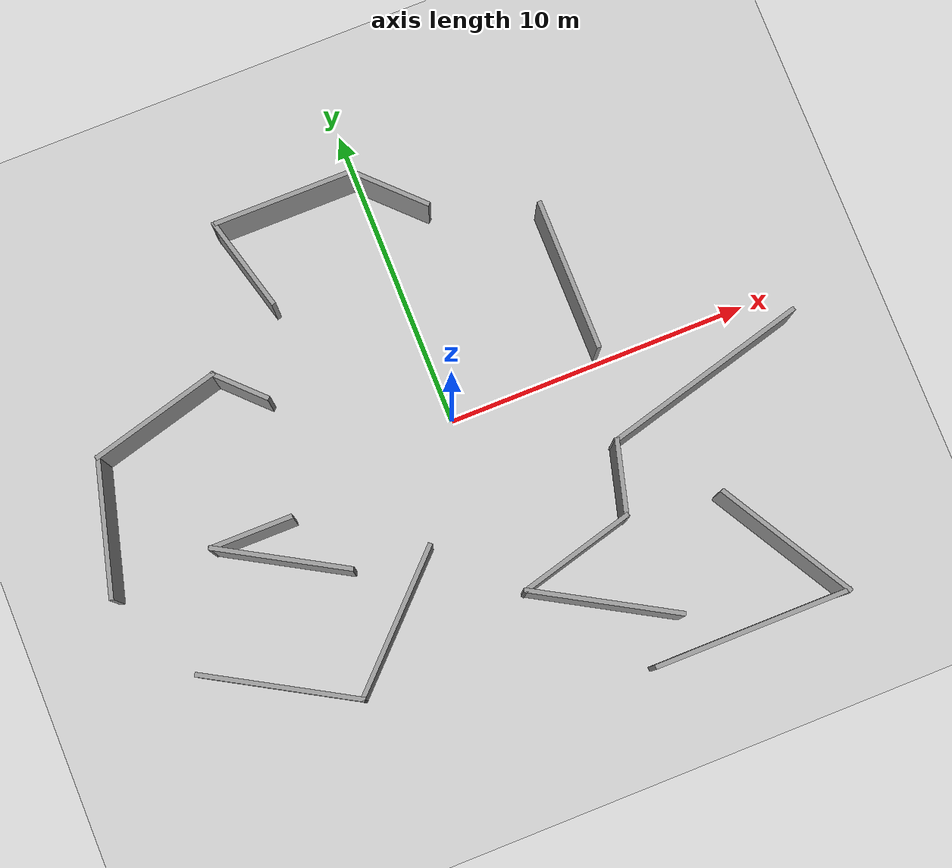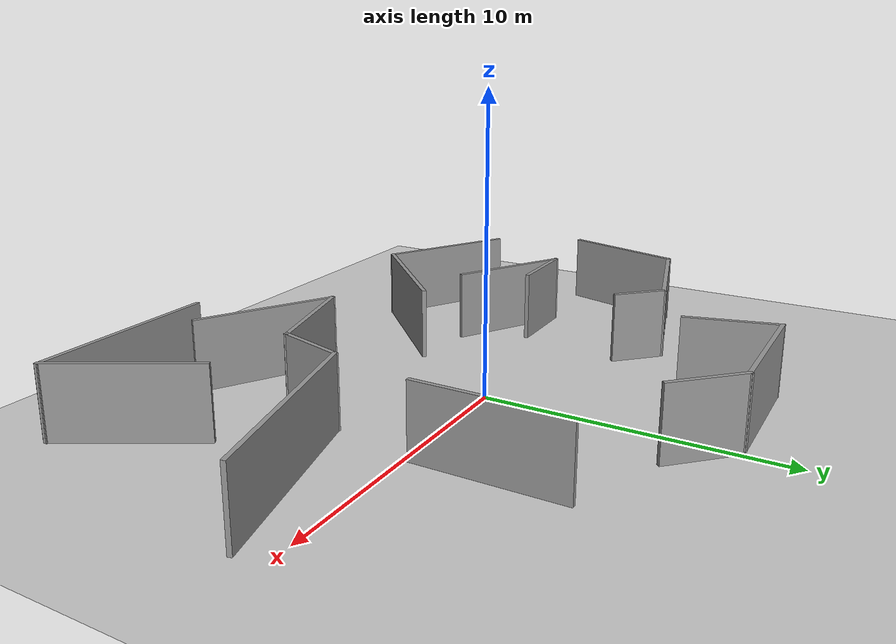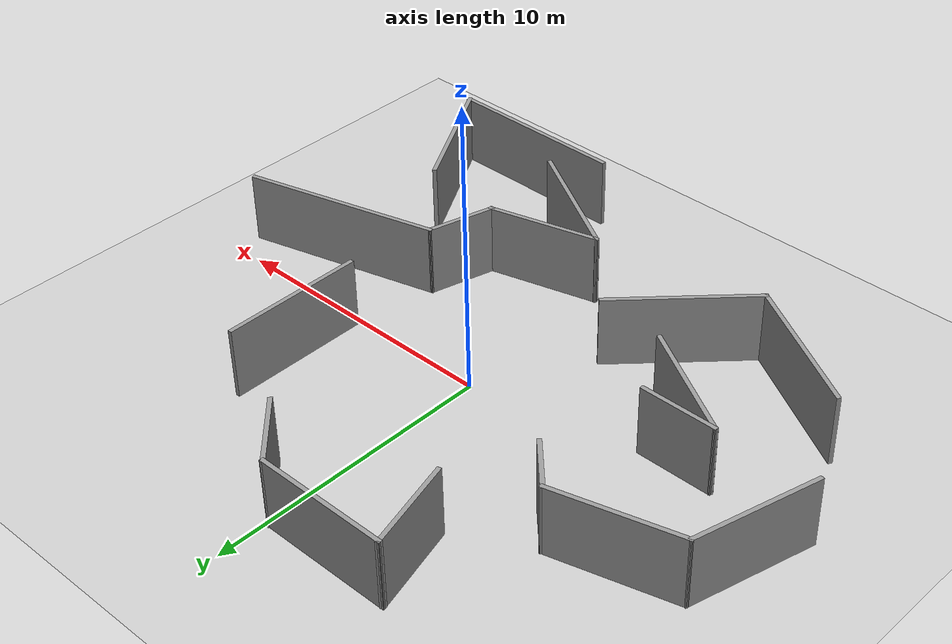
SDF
<sdf version="1.7">
 <world name="default">
  <light name="sun" type="directional">
   <pose>0 0 10 0 -0 0</pose>
   <diffuse>0.8 0.8 0.8 1</diffuse>
   <specular>0.2 0.2 0.2 1</specular>
   <attenuation>
    <range>1000</range>
    <constant>0.9</constant>
    <linear>0.01</linear>
    <quadratic>0.001</quadratic>
   </attenuation>
   <direction>-0.5 0.1 -0.9</direction>
   <spot><inner_angle>0</inner_angle><outer_angle>0</outer_angle><falloff>0</falloff></spot>
  </light>
  <model name="ground_plane">
   <static>1</static>
   <link name="link">
    <collision name="collision">
     <geometry><plane><normal>0 0 1</normal><size>100 100</size></plane></geometry>
     <surface>
      <contact><collide_bitmask>65535</collide_bitmask></contact>
      <friction><ode><mu>100</mu><mu2>50</mu2></ode></friction>
     </surface>
    </collision>
    <visual name="visual">
     <cast_shadows>0</cast_shadows>
     <geometry><plane><normal>0 0 1</normal><size>100 100</size></plane></geometry>
     <material>
      <script><uri>file://media/materials/scripts/gazebo.material</uri><name>Gazebo/Grey</name></script>
     </material>
    </visual>
   </link>
  </model>
  <gravity>0 0 -9.8</gravity>
  <magnetic_field>6e-06 2.3e-05 -4.2e-05</magnetic_field>
  <atmosphere type="adiabatic"/>
  <physics type="ode">
   <max_step_size>0.001</max_step_size>
   <real_time_factor>1</real_time_factor>
   <real_time_update_rate>1000</real_time_update_rate>
  </physics>
  <scene><ambient>0.4 0.4 0.4 1</ambient><background>0.7 0.7 0.7 1</background><shadows>1</shadows></scene>
  <spherical_coordinates>
   <surface_model>EARTH_WGS84</surface_model>
   <latitude_deg>0</latitude_deg>
   <longitude_deg>0</longitude_deg>
   <elevation>0</elevation>
   <heading_deg>0</heading_deg>
  </spherical_coordinates>
  <model name="khong_gian_gazebo">
   <pose>-0.410669 -0.704244 0 0 -0 0</pose>
   <link name="Wall_0">
    <collision name="Wall_0_Collision">
     <geometry><box><size>5.25 0.15 2.5</size></box></geometry>
     <pose>0 0 1.25 0 -0 0</pose>
    </collision>
    <visual name="Wall_0_Visual">
     <pose>0 0 1.25 0 -0 0</pose>
     <geometry><box><size>5.25 0.15 2.5</size></box></geometry>
     <material>
      <script><uri>file://media/materials/scripts/gazebo.material</uri><name>Gazebo/Grey</name></script>
      <ambient>1 1 1 1</ambient>
     </material>
     <meta><layer>0</layer></meta>
    </visual>
    <pose>-3.5793 -4.72989 0 0 -0 -2.35619</pose>
   </link>
   <link name="Wall_1">
    <collision name="Wall_1_Collision">
     <geometry><box><size>5.25 0.15 2.5</size></box></geometry>
     <pose>0 0 1.25 0 -0 0</pose>
    </collision>
    <visual name="Wall_1_Visual">
     <pose>0 0 1.25 0 -0 0</pose>
     <geometry><box><size>5.25 0.15 2.5</size></box></geometry>
     <material>
      <script><uri>file://media/materials/scripts/gazebo.material</uri><name>Gazebo/Grey</name></script>
      <ambient>1 1 1 1</ambient>
     </material>
     <meta><layer>0</layer></meta>
    </visual>
    <pose>-7.59079 -5.25801 0 0 -0 2.61799</pose>
   </link>
   <link name="Wall_10">
    <collision name="Wall_10_Collision">
     <geometry><box><size>5 0.15 2.5</size></box></geometry>
     <pose>0 0 1.25 0 -0 0</pose>
    </collision>
    <visual name="Wall_10_Visual">
     <pose>0 0 1.25 0 -0 0</pose>
     <geometry><box><size>5 0.15 2.5</size></box></geometry>
     <material>
      <script><uri>file://media/materials/scripts/gazebo.material</uri><name>Gazebo/Grey</name></script>
      <ambient>1 1 1 1</ambient>
     </material>
     <meta><layer>0</layer></meta>
    </visual>
    <pose>5.37652 3.34963 0 0 -0 1.5708</pose>
   </link>
   <link name="Wall_12">
    <collision name="Wall_12_Collision">
     <geometry><box><size>2.75 0.15 2.5</size></box></geometry>
     <pose>0 0 1.25 0 -0 0</pose>
    </collision>
    <visual name="Wall_12_Visual">
     <pose>0 0 1.25 0 -0 0</pose>
     <geometry><box><size>2.75 0.15 2.5</size></box></geometry>
     <material>
      <script><uri>file://media/materials/scripts/gazebo.material</uri><name>Gazebo/Grey</name></script>
      <ambient>1 1 1 1</ambient>
     </material>
     <meta><layer>0</layer></meta>
    </visual>
    <pose>1.17273 7.99661 0 0 -0 2.35619</pose>
   </link>
   <link name="Wall_13">
    <collision name="Wall_13_Collision">
     <geometry><box><size>4.75 0.15 2.5</size></box></geometry>
     <pose>0 0 1.25 0 -0 0</pose>
    </collision>
    <visual name="Wall_13_Visual">
     <pose>0 0 1.25 0 -0 0</pose>
     <geometry><box><size>4.75 0.15 2.5</size></box></geometry>
     <material>
      <script><uri>file://media/materials/scripts/gazebo.material</uri><name>Gazebo/Grey</name></script>
      <ambient>1 1 1 1</ambient>
     </material>
     <meta><layer>0</layer></meta>
    </visual>
    <pose>-2.04651 8.91585 0 0 -0 3.14159</pose>
   </link>
   <link name="Wall_14">
    <collision name="Wall_14_Collision">
     <geometry><box><size>3.25 0.15 2.5</size></box></geometry>
     <pose>0 0 1.25 0 -0 0</pose>
    </collision>
    <visual name="Wall_14_Visual">
     <pose>0 0 1.25 0 -0 0</pose>
     <geometry><box><size>3.25 0.15 2.5</size></box></geometry>
     <material>
      <script><uri>file://media/materials/scripts/gazebo.material</uri><name>Gazebo/Grey</name></script>
      <ambient>1 1 1 1</ambient>
     </material>
     <meta><layer>0</layer></meta>
    </visual>
    <pose>-3.94534 7.41866 0 0 -0 -1.309</pose>
   </link>
   <link name="Wall_16">
    <collision name="Wall_16_Collision">
     <geometry><box><size>7 0.15 2.5</size></box></geometry>
     <pose>0 0 1.25 0 -0 0</pose>
    </collision>
    <visual name="Wall_16_Visual">
     <pose>0 0 1.25 0 -0 0</pose>
     <geometry><box><size>7 0.15 2.5</size></box></geometry>
     <material>
      <script><uri>file://media/materials/scripts/gazebo.material</uri><name>Gazebo/Grey</name></script>
      <ambient>1 1 1 1</ambient>
     </material>
     <meta><layer>0</layer></meta>
    </visual>
    <pose>8.10531 -1.14149 0 0 -0 -2.87979</pose>
   </link>
   <link name="Wall_17">
    <collision name="Wall_17_Collision">
     <geometry><box><size>2.5 0.15 2.5</size></box></geometry>
     <pose>0 0 1.25 0 -0 0</pose>
    </collision>
    <visual name="Wall_17_Visual">
     <pose>0 0 1.25 0 -0 0</pose>
     <geometry><box><size>2.5 0.15 2.5</size></box></geometry>
     <material>
      <script><uri>file://media/materials/scripts/gazebo.material</uri><name>Gazebo/Grey</name></script>
      <ambient>1 1 1 1</ambient>
     </material>
     <meta><layer>0</layer></meta>
    </visual>
    <pose>4.4929 -3.16291 0 0 -0 -1.8326</pose>
   </link>
   <link name="Wall_18">
    <collision name="Wall_18_Collision">
     <geometry><box><size>4 0.15 2.5</size></box></geometry>
     <pose>0 0 1.25 0 -0 0</pose>
    </collision>
    <visual name="Wall_18_Visual">
     <pose>0 0 1.25 0 -0 0</pose>
     <geometry><box><size>4 0.15 2.5</size></box></geometry>
     <material>
      <script><uri>file://media/materials/scripts/gazebo.material</uri><name>Gazebo/Grey</name></script>
      <ambient>1 1 1 1</ambient>
     </material>
     <meta><layer>0</layer></meta>
    </visual>
    <pose>2.32938 -4.7961 0 0 -0 -2.87979</pose>
   </link>
   <link name="Wall_19">
    <collision name="Wall_19_Collision">
     <geometry><box><size>5 0.15 2.5</size></box></geometry>
     <pose>0 0 1.25 0 -0 0</pose>
    </collision>
    <visual name="Wall_19_Visual">
     <pose>0 0 1.25 0 -0 0</pose>
     <geometry><box><size>5 0.15 2.5</size></box></geometry>
     <material>
      <script><uri>file://media/materials/scripts/gazebo.material</uri><name>Gazebo/Grey</name></script>
      <ambient>1 1 1 1</ambient>
     </material>
     <meta><layer>0</layer></meta>
    </visual>
    <pose>2.57009 -6.50682 0 0 -0 -0.523599</pose>
   </link>
   <link name="Wall_21">
    <collision name="Wall_21_Collision">
     <geometry><box><size>5 0.15 2.5</size></box></geometry>
     <pose>0 0 1.25 0 -0 0</pose>
    </collision>
    <visual name="Wall_21_Visual">
     <pose>0 0 1.25 0 -0 0</pose>
     <geometry><box><size>5 0.15 2.5</size></box></geometry>
     <material>
      <script><uri>file://media/materials/scripts/gazebo.material</uri><name>Gazebo/Grey</name></script>
      <ambient>1 1 1 1</ambient>
     </material>
     <meta><layer>0</layer></meta>
    </visual>
    <pose>8.4626 -6.81935 0 0 -0 -1.0472</pose>
   </link>
   <link name="Wall_22">
    <collision name="Wall_22_Collision">
     <geometry><box><size>6.5 0.15 2.5</size></box></geometry>
     <pose>0 0 1.25 0 -0 0</pose>
    </collision>
    <visual name="Wall_22_Visual">
     <pose>0 0 1.25 0 -0 0</pose>
     <geometry><box><size>6.5 0.15 2.5</size></box></geometry>
     <material>
      <script><uri>file://media/materials/scripts/gazebo.material</uri><name>Gazebo/Grey</name></script>
      <ambient>1 1 1 1</ambient>
     </material>
     <meta><layer>0</layer></meta>
    </visual>
    <pose>6.5001 -8.91946 0 0 -0 3.14159</pose>
   </link>
   <link name="Wall_3">
    <collision name="Wall_3_Collision">
     <geometry><box><size>4.5 0.15 2.5</size></box></geometry>
     <pose>0 0 1.25 0 -0 0</pose>
    </collision>
    <visual name="Wall_3_Visual">
     <pose>0 0 1.25 0 -0 0</pose>
     <geometry><box><size>4.5 0.15 2.5</size></box></geometry>
     <material>
      <script><uri>file://media/materials/scripts/gazebo.material</uri><name>Gazebo/Grey</name></script>
      <ambient>1 1 1 1</ambient>
     </material>
     <meta><layer>0</layer></meta>
    </visual>
    <pose>-6.15357 -1.61689 0 0 -0 2.61799</pose>
   </link>
   <link name="Wall_4">
    <collision name="Wall_4_Collision">
     <geometry><box><size>2.75 0.15 2.5</size></box></geometry>
     <pose>0 0 1.25 0 -0 0</pose>
    </collision>
    <visual name="Wall_4_Visual">
     <pose>0 0 1.25 0 -0 0</pose>
     <geometry><box><size>2.75 0.15 2.5</size></box></geometry>
     <material>
      <script><uri>file://media/materials/scripts/gazebo.material</uri><name>Gazebo/Grey</name></script>
      <ambient>1 1 1 1</ambient>
     </material>
     <meta><layer>0</layer></meta>
    </visual>
    <pose>-6.73717 -0.529392 0 0 -0 0</pose>
   </link>
   <link name="Wall_6">
    <collision name="Wall_6_Collision">
     <geometry><box><size>2 0.15 2.5</size></box></geometry>
     <pose>0 0 1.25 0 -0 0</pose>
    </collision>
    <visual name="Wall_6_Visual">
     <pose>0 0 1.25 0 -0 0</pose>
     <geometry><box><size>2 0.15 2.5</size></box></geometry>
     <material>
      <script><uri>file://media/materials/scripts/gazebo.material</uri><name>Gazebo/Grey</name></script>
      <ambient>1 1 1 1</ambient>
     </material>
     <meta><layer>0</layer></meta>
    </visual>
    <pose>-5.43189 3.8455 0 0 -0 2.35619</pose>
   </link>
   <link name="Wall_7">
    <collision name="Wall_7_Collision">
     <geometry><box><size>4.5 0.15 2.5</size></box></geometry>
     <pose>0 0 1.25 0 -0 0</pose>
    </collision>
    <visual name="Wall_7_Visual">
     <pose>0 0 1.25 0 -0 0</pose>
     <geometry><box><size>4.5 0.15 2.5</size></box></geometry>
     <material>
      <script><uri>file://media/materials/scripts/gazebo.material</uri><name>Gazebo/Grey</name></script>
      <ambient>1 1 1 1</ambient>
     </material>
     <meta><layer>0</layer></meta>
    </visual>
    <pose>-8.18685 3.93664 0 0 -0 -2.87979</pose>
   </link>
   <link name="Wall_8">
    <collision name="Wall_8_Collision">
     <geometry><box><size>4.5 0.15 2.5</size></box></geometry>
     <pose>0 0 1.25 0 -0 0</pose>
    </collision>
    <visual name="Wall_8_Visual">
     <pose>0 0 1.25 0 -0 0</pose>
     <geometry><box><size>4.5 0.15 2.5</size></box></geometry>
     <material>
      <script><uri>file://media/materials/scripts/gazebo.material</uri><name>Gazebo/Grey</name></script>
      <ambient>1 1 1 1</ambient>
     </material>
     <meta><layer>0</layer></meta>
    </visual>
    <pose>-10.8507 1.27282 0 0 -0 -1.8326</pose>
   </link>
   <static>1</static>
  </model>
  <light name="sun" type="directional">
   <pose>12.7881 14.5177 10 0 -0 0</pose>
   <diffuse>0.8 0.8 0.8 1</diffuse>
   <specular>0.2 0.2 0.2 1</specular>
   <attenuation>
    <range>1000</range>
    <constant>0.9</constant>
    <linear>0.01</linear>
    <quadratic>0.001</quadratic>
   </attenuation>
   <direction>-0.5 0.1 -0.9</direction>
  </light>
  <light name="sun" type="directional">
   <pose>-0.149256 0.096197 10 0 -0 0</pose>
   <diffuse>0.8 0.8 0.8 1</diffuse>
   <specular>0.2 0.2 0.2 1</specular>
   <attenuation>
    <range>1000</range>
    <constant>0.9</constant>
    <linear>0.01</linear>
    <quadratic>0.001</quadratic>
   </attenuation>
   <direction>-0.5 0.1 -0.9</direction>
  </light>
 </world>
</sdf>
